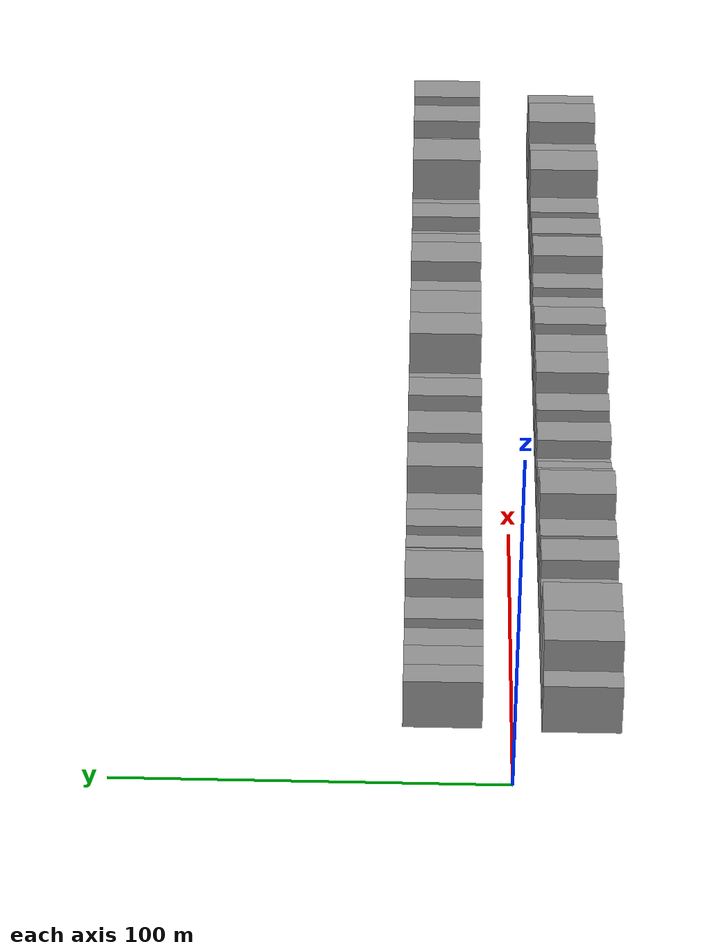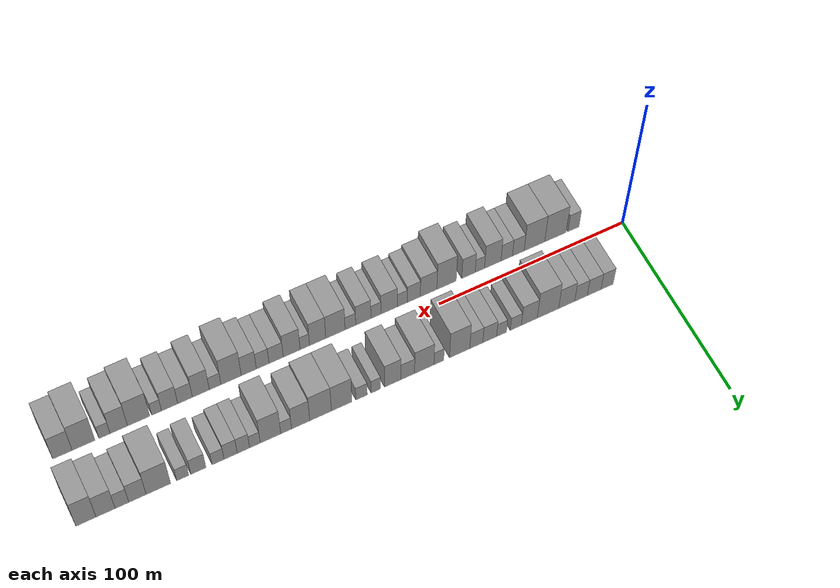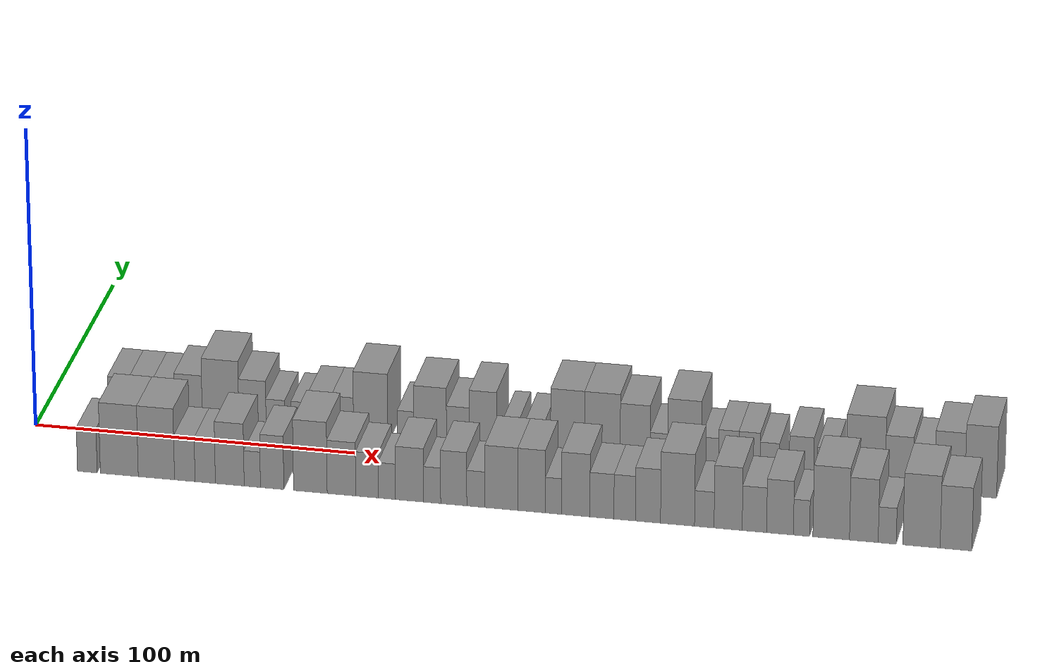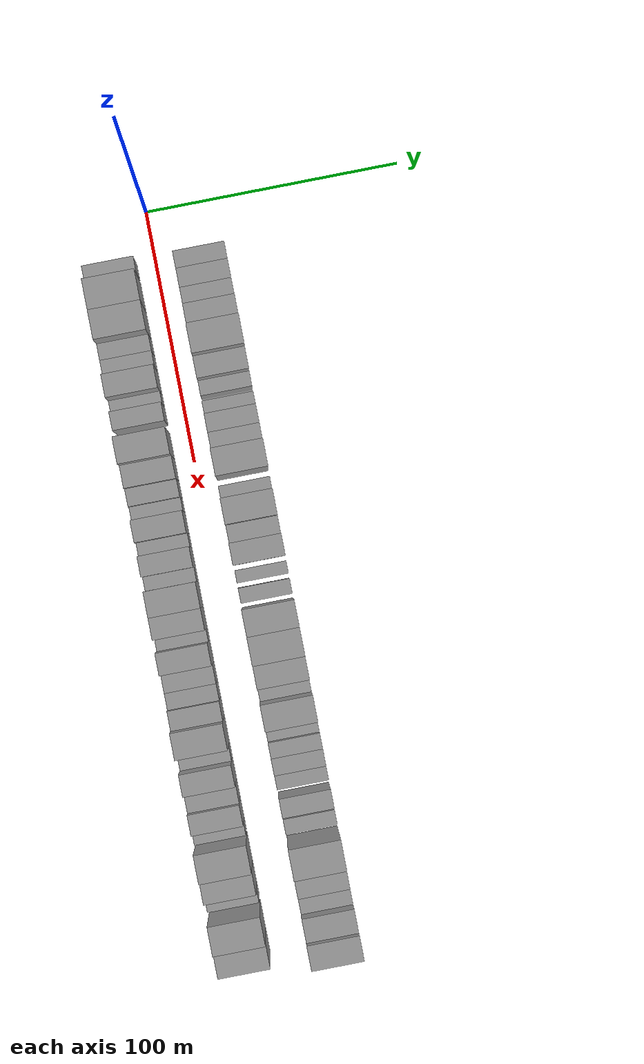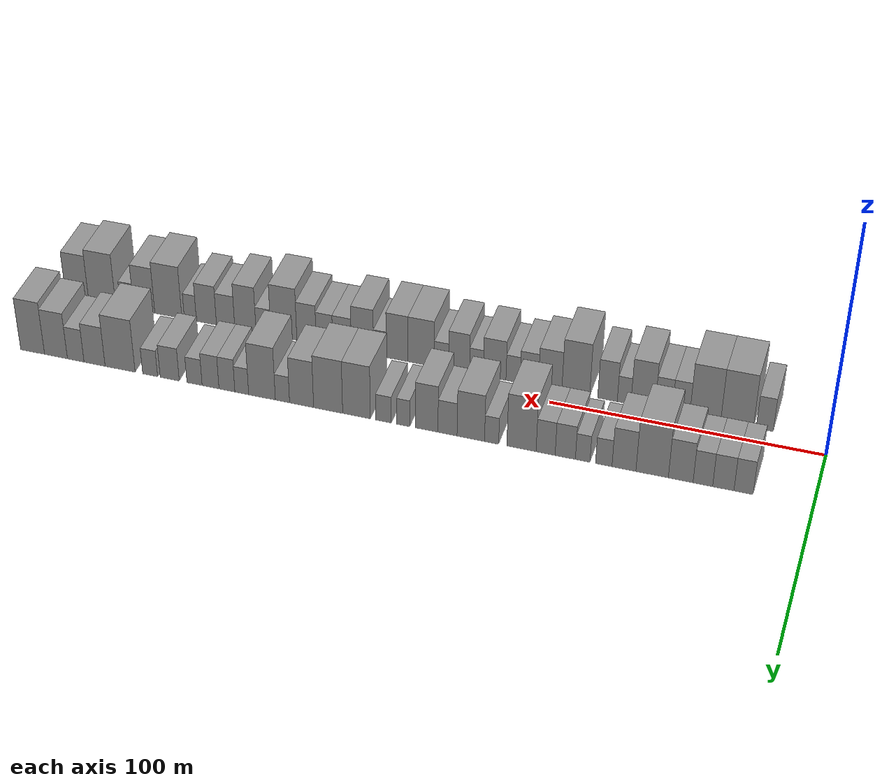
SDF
<sdf version="1.6">
 <world name="default">
  <scene>
   <sky><clouds><speed>12</speed></clouds></sky>
   <ambient>0.4 0.4 0.4 1</ambient>
   <background>0.7 0.7 0.7 1</background>
   <shadows>1</shadows>
  </scene>
  <gravity>0 0 -9.8066</gravity>
  <magnetic_field>6e-06 2.3e-05 -4.2e-05</magnetic_field>
  <physics default="0" name="default_physics" type="ode">
   <ode>
    <solver>
     <type>quick</type>
     <iters>10</iters>
     <sor>1.0</sor>
     <use_dynamic_moi_rescaling>0</use_dynamic_moi_rescaling>
    </solver>
    <constraints>
     <cfm>0</cfm>
     <erp>0.2</erp>
     <contact_max_correcting_vel>100</contact_max_correcting_vel>
     <contact_surface_layer>0.001</contact_surface_layer>
    </constraints>
   </ode>
   <max_step_size>0.004</max_step_size>
   <real_time_factor>1</real_time_factor>
   <real_time_update_rate>250</real_time_update_rate>
  </physics>
  <light name="sun" type="directional">
   <pose>0 0 10 0 0 0</pose>
   <diffuse>0.8 0.8 0.8 1</diffuse>
   <specular>0.2 0.2 0.2 1</specular>
   <attenuation>
    <range>1000</range>
    <constant>0.9</constant>
    <linear>0.01</linear>
    <quadratic>0.001</quadratic>
   </attenuation>
   <direction>-0.5 0.1 -0.9</direction>
  </light>
  <model name="building_1">
   <static>1</static>
   <pose>24.3293 17.5000 0 0.000000 0.000000 1.570796</pose>
   <link name="link">
    <pose>0 0 7.50 0 0 0</pose>
    <collision name="collision"><geometry><box><size>20.0000 6.6587 15.0000</size></box></geometry></collision>
    <visual name="visual">
     <cast_shadows>0</cast_shadows>
     <geometry><box><size>20.0000 6.6587 15.0000</size></box></geometry>
     <material>
      <script>
       <uri>model://grey_wall/materials/scripts</uri>
       <uri>model://grey_wall/materials/textures</uri>
       <name>vrc/grey_wall</name>
      </script>
     </material>
    </visual>
   </link>
  </model>
  <model name="building_2">
   <static>1</static>
   <pose>31.3864 17.5000 0 0.000000 0.000000 1.570796</pose>
   <link name="link">
    <pose>0 0 7.50 0 0 0</pose>
    <collision name="collision"><geometry><box><size>20.0000 7.4555 15.0000</size></box></geometry></collision>
    <visual name="visual">
     <cast_shadows>0</cast_shadows>
     <geometry><box><size>20.0000 7.4555 15.0000</size></box></geometry>
     <material>
      <script>
       <uri>model://grey_wall/materials/scripts</uri>
       <uri>model://grey_wall/materials/textures</uri>
       <name>vrc/grey_wall</name>
      </script>
     </material>
    </visual>
   </link>
  </model>
  <model name="building_3">
   <static>1</static>
   <pose>38.5593 17.5000 0 0.000000 0.000000 1.570796</pose>
   <link name="link">
    <pose>0 0 7.50 0 0 0</pose>
    <collision name="collision"><geometry><box><size>20.0000 6.8902 15.0000</size></box></geometry></collision>
    <visual name="visual">
     <cast_shadows>0</cast_shadows>
     <geometry><box><size>20.0000 6.8902 15.0000</size></box></geometry>
     <material>
      <script>
       <uri>model://grey_wall/materials/scripts</uri>
       <uri>model://grey_wall/materials/textures</uri>
       <name>vrc/grey_wall</name>
      </script>
     </material>
    </visual>
   </link>
  </model>
  <model name="building_4">
   <static>1</static>
   <pose>46.3622 17.5000 0 0.000000 0.000000 1.570796</pose>
   <link name="link">
    <pose>0 0 9.00 0 0 0</pose>
    <collision name="collision"><geometry><box><size>20.0000 8.7157 18.0000</size></box></geometry></collision>
    <visual name="visual">
     <cast_shadows>0</cast_shadows>
     <geometry><box><size>20.0000 8.7157 18.0000</size></box></geometry>
     <material>
      <script>
       <uri>model://grey_wall/materials/scripts</uri>
       <uri>model://grey_wall/materials/textures</uri>
       <name>vrc/grey_wall</name>
      </script>
     </material>
    </visual>
   </link>
  </model>
  <model name="building_5">
   <static>1</static>
   <pose>56.4723 17.5000 0 0.000000 0.000000 1.570796</pose>
   <link name="link">
    <pose>0 0 12.00 0 0 0</pose>
    <collision name="collision"><geometry><box><size>20.0000 11.5045 24.0000</size></box></geometry></collision>
    <visual name="visual">
     <cast_shadows>0</cast_shadows>
     <geometry><box><size>20.0000 11.5045 24.0000</size></box></geometry>
     <material>
      <script>
       <uri>model://grey_wall/materials/scripts</uri>
       <uri>model://grey_wall/materials/textures</uri>
       <name>vrc/grey_wall</name>
      </script>
     </material>
    </visual>
   </link>
  </model>
  <model name="building_6">
   <static>1</static>
   <pose>66.5000 17.5000 0 0.000000 0.000000 1.570796</pose>
   <link name="link">
    <pose>0 0 9.00 0 0 0</pose>
    <collision name="collision"><geometry><box><size>20.0000 8.5510 18.0000</size></box></geometry></collision>
    <visual name="visual">
     <cast_shadows>0</cast_shadows>
     <geometry><box><size>20.0000 8.5510 18.0000</size></box></geometry>
     <material>
      <script>
       <uri>model://grey_wall/materials/scripts</uri>
       <uri>model://grey_wall/materials/textures</uri>
       <name>vrc/grey_wall</name>
      </script>
     </material>
    </visual>
   </link>
  </model>
  <model name="building_7">
   <static>1</static>
   <pose>73.7174 17.5000 0 0.000000 0.000000 1.570796</pose>
   <link name="link">
    <pose>0 0 6.00 0 0 0</pose>
    <collision name="collision"><geometry><box><size>20.0000 5.8837 12.0000</size></box></geometry></collision>
    <visual name="visual">
     <cast_shadows>0</cast_shadows>
     <geometry><box><size>20.0000 5.8837 12.0000</size></box></geometry>
     <material>
      <script>
       <uri>model://grey_wall/materials/scripts</uri>
       <uri>model://grey_wall/materials/textures</uri>
       <name>vrc/grey_wall</name>
      </script>
     </material>
    </visual>
   </link>
  </model>
  <model name="building_8">
   <static>1</static>
   <pose>81.2835 17.5000 0 0.000000 0.000000 1.570796</pose>
   <link name="link">
    <pose>0 0 6.00 0 0 0</pose>
    <collision name="collision"><geometry><box><size>20.0000 5.2485 12.0000</size></box></geometry></collision>
    <visual name="visual">
     <cast_shadows>0</cast_shadows>
     <geometry><box><size>20.0000 5.2485 12.0000</size></box></geometry>
     <material>
      <script>
       <uri>model://grey_wall/materials/scripts</uri>
       <uri>model://grey_wall/materials/textures</uri>
       <name>vrc/grey_wall</name>
      </script>
     </material>
    </visual>
   </link>
  </model>
  <model name="building_9">
   <static>1</static>
   <pose>87.5686 17.5000 0 0.000000 0.000000 1.570796</pose>
   <link name="link">
    <pose>0 0 7.50 0 0 0</pose>
    <collision name="collision"><geometry><box><size>20.0000 7.3218 15.0000</size></box></geometry></collision>
    <visual name="visual">
     <cast_shadows>0</cast_shadows>
     <geometry><box><size>20.0000 7.3218 15.0000</size></box></geometry>
     <material>
      <script>
       <uri>model://grey_wall/materials/scripts</uri>
       <uri>model://grey_wall/materials/textures</uri>
       <name>vrc/grey_wall</name>
      </script>
     </material>
    </visual>
   </link>
  </model>
  <model name="building_10">
   <static>1</static>
   <pose>94.6913 17.5000 0 0.000000 0.000000 1.570796</pose>
   <link name="link">
    <pose>0 0 7.50 0 0 0</pose>
    <collision name="collision"><geometry><box><size>20.0000 6.9235 15.0000</size></box></geometry></collision>
    <visual name="visual">
     <cast_shadows>0</cast_shadows>
     <geometry><box><size>20.0000 6.9235 15.0000</size></box></geometry>
     <material>
      <script>
       <uri>model://grey_wall/materials/scripts</uri>
       <uri>model://grey_wall/materials/textures</uri>
       <name>vrc/grey_wall</name>
      </script>
     </material>
    </visual>
   </link>
  </model>
  <model name="building_11">
   <static>1</static>
   <pose>103.4852 17.5000 0 0.000000 0.000000 1.570796</pose>
   <link name="link">
    <pose>0 0 12.00 0 0 0</pose>
    <collision name="collision"><geometry><box><size>20.0000 10.6644 24.0000</size></box></geometry></collision>
    <visual name="visual">
     <cast_shadows>0</cast_shadows>
     <geometry><box><size>20.0000 10.6644 24.0000</size></box></geometry>
     <material>
      <script>
       <uri>model://grey_wall/materials/scripts</uri>
       <uri>model://grey_wall/materials/textures</uri>
       <name>vrc/grey_wall</name>
      </script>
     </material>
    </visual>
   </link>
  </model>
  <model name="building_12">
   <static>1</static>
   <pose>114.4038 17.5000 0 0.000000 0.000000 1.570796</pose>
   <link name="link">
    <pose>0 0 6.00 0 0 0</pose>
    <collision name="collision"><geometry><box><size>20.0000 5.1728 12.0000</size></box></geometry></collision>
    <visual name="visual">
     <cast_shadows>0</cast_shadows>
     <geometry><box><size>20.0000 5.1728 12.0000</size></box></geometry>
     <material>
      <script>
       <uri>model://grey_wall/materials/scripts</uri>
       <uri>model://grey_wall/materials/textures</uri>
       <name>vrc/grey_wall</name>
      </script>
     </material>
    </visual>
   </link>
  </model>
  <model name="building_13">
   <static>1</static>
   <pose>122.0544 17.5000 0 0.000000 0.000000 1.570796</pose>
   <link name="link">
    <pose>0 0 10.50 0 0 0</pose>
    <collision name="collision"><geometry><box><size>20.0000 10.1282 21.0000</size></box></geometry></collision>
    <visual name="visual">
     <cast_shadows>0</cast_shadows>
     <geometry><box><size>20.0000 10.1282 21.0000</size></box></geometry>
     <material>
      <script>
       <uri>model://grey_wall/materials/scripts</uri>
       <uri>model://grey_wall/materials/textures</uri>
       <name>vrc/grey_wall</name>
      </script>
     </material>
    </visual>
   </link>
  </model>
  <model name="building_14">
   <static>1</static>
   <pose>130.6511 17.5000 0 0.000000 0.000000 1.570796</pose>
   <link name="link">
    <pose>0 0 7.50 0 0 0</pose>
    <collision name="collision"><geometry><box><size>20.0000 7.0652 15.0000</size></box></geometry></collision>
    <visual name="visual">
     <cast_shadows>0</cast_shadows>
     <geometry><box><size>20.0000 7.0652 15.0000</size></box></geometry>
     <material>
      <script>
       <uri>model://grey_wall/materials/scripts</uri>
       <uri>model://grey_wall/materials/textures</uri>
       <name>vrc/grey_wall</name>
      </script>
     </material>
    </visual>
   </link>
  </model>
  <model name="building_15">
   <static>1</static>
   <pose>138.4211 17.5000 0 0.000000 0.000000 1.570796</pose>
   <link name="link">
    <pose>0 0 10.50 0 0 0</pose>
    <collision name="collision"><geometry><box><size>20.0000 8.4748 21.0000</size></box></geometry></collision>
    <visual name="visual">
     <cast_shadows>0</cast_shadows>
     <geometry><box><size>20.0000 8.4748 21.0000</size></box></geometry>
     <material>
      <script>
       <uri>model://grey_wall/materials/scripts</uri>
       <uri>model://grey_wall/materials/textures</uri>
       <name>vrc/grey_wall</name>
      </script>
     </material>
    </visual>
   </link>
  </model>
  <model name="building_16">
   <static>1</static>
   <pose>147.1039 17.5000 0 0.000000 0.000000 1.570796</pose>
   <link name="link">
    <pose>0 0 6.00 0 0 0</pose>
    <collision name="collision"><geometry><box><size>20.0000 4.8908 12.0000</size></box></geometry></collision>
    <visual name="visual">
     <cast_shadows>0</cast_shadows>
     <geometry><box><size>20.0000 4.8908 12.0000</size></box></geometry>
     <material>
      <script>
       <uri>model://grey_wall/materials/scripts</uri>
       <uri>model://grey_wall/materials/textures</uri>
       <name>vrc/grey_wall</name>
      </script>
     </material>
    </visual>
   </link>
  </model>
  <model name="building_17">
   <static>1</static>
   <pose>154.4874 17.5000 0 0.000000 0.000000 1.570796</pose>
   <link name="link">
    <pose>0 0 6.00 0 0 0</pose>
    <collision name="collision"><geometry><box><size>20.0000 5.8762 12.0000</size></box></geometry></collision>
    <visual name="visual">
     <cast_shadows>0</cast_shadows>
     <geometry><box><size>20.0000 5.8762 12.0000</size></box></geometry>
     <material>
      <script>
       <uri>model://grey_wall/materials/scripts</uri>
       <uri>model://grey_wall/materials/textures</uri>
       <name>vrc/grey_wall</name>
      </script>
     </material>
    </visual>
   </link>
  </model>
  <model name="building_18">
   <static>1</static>
   <pose>164.6580 17.5000 0 0.000000 0.000000 1.570796</pose>
   <link name="link">
    <pose>0 0 12.00 0 0 0</pose>
    <collision name="collision"><geometry><box><size>20.0000 10.4650 24.0000</size></box></geometry></collision>
    <visual name="visual">
     <cast_shadows>0</cast_shadows>
     <geometry><box><size>20.0000 10.4650 24.0000</size></box></geometry>
     <material>
      <script>
       <uri>model://grey_wall/materials/scripts</uri>
       <uri>model://grey_wall/materials/textures</uri>
       <name>vrc/grey_wall</name>
      </script>
     </material>
    </visual>
   </link>
  </model>
  <model name="building_19">
   <static>1</static>
   <pose>175.4049 17.5000 0 0.000000 0.000000 1.570796</pose>
   <link name="link">
    <pose>0 0 12.00 0 0 0</pose>
    <collision name="collision"><geometry><box><size>20.0000 11.0287 24.0000</size></box></geometry></collision>
    <visual name="visual">
     <cast_shadows>0</cast_shadows>
     <geometry><box><size>20.0000 11.0287 24.0000</size></box></geometry>
     <material>
      <script>
       <uri>model://grey_wall/materials/scripts</uri>
       <uri>model://grey_wall/materials/textures</uri>
       <name>vrc/grey_wall</name>
      </script>
     </material>
    </visual>
   </link>
  </model>
  <model name="building_20">
   <static>1</static>
   <pose>185.5153 17.5000 0 0.000000 0.000000 1.570796</pose>
   <link name="link">
    <pose>0 0 10.50 0 0 0</pose>
    <collision name="collision"><geometry><box><size>20.0000 9.1920 21.0000</size></box></geometry></collision>
    <visual name="visual">
     <cast_shadows>0</cast_shadows>
     <geometry><box><size>20.0000 9.1920 21.0000</size></box></geometry>
     <material>
      <script>
       <uri>model://grey_wall/materials/scripts</uri>
       <uri>model://grey_wall/materials/textures</uri>
       <name>vrc/grey_wall</name>
      </script>
     </material>
    </visual>
   </link>
  </model>
  <model name="building_21">
   <static>1</static>
   <pose>192.8316 17.5000 0 0.000000 0.000000 1.570796</pose>
   <link name="link">
    <pose>0 0 6.00 0 0 0</pose>
    <collision name="collision"><geometry><box><size>20.0000 5.4407 12.0000</size></box></geometry></collision>
    <visual name="visual">
     <cast_shadows>0</cast_shadows>
     <geometry><box><size>20.0000 5.4407 12.0000</size></box></geometry>
     <material>
      <script>
       <uri>model://grey_wall/materials/scripts</uri>
       <uri>model://grey_wall/materials/textures</uri>
       <name>vrc/grey_wall</name>
      </script>
     </material>
    </visual>
   </link>
  </model>
  <model name="building_22">
   <static>1</static>
   <pose>200.6947 17.5000 0 0.000000 0.000000 1.570796</pose>
   <link name="link">
    <pose>0 0 12.00 0 0 0</pose>
    <collision name="collision"><geometry><box><size>20.0000 10.2853 24.0000</size></box></geometry></collision>
    <visual name="visual">
     <cast_shadows>0</cast_shadows>
     <geometry><box><size>20.0000 10.2853 24.0000</size></box></geometry>
     <material>
      <script>
       <uri>model://grey_wall/materials/scripts</uri>
       <uri>model://grey_wall/materials/textures</uri>
       <name>vrc/grey_wall</name>
      </script>
     </material>
    </visual>
   </link>
  </model>
  <model name="building_23">
   <static>1</static>
   <pose>208.5004 17.5000 0 0.000000 0.000000 1.570796</pose>
   <link name="link">
    <pose>0 0 6.00 0 0 0</pose>
    <collision name="collision"><geometry><box><size>20.0000 5.3262 12.0000</size></box></geometry></collision>
    <visual name="visual">
     <cast_shadows>0</cast_shadows>
     <geometry><box><size>20.0000 5.3262 12.0000</size></box></geometry>
     <material>
      <script>
       <uri>model://grey_wall/materials/scripts</uri>
       <uri>model://grey_wall/materials/textures</uri>
       <name>vrc/grey_wall</name>
      </script>
     </material>
    </visual>
   </link>
  </model>
  <model name="building_24">
   <static>1</static>
   <pose>214.2465 17.5000 0 0.000000 0.000000 1.570796</pose>
   <link name="link">
    <pose>0 0 7.50 0 0 0</pose>
    <collision name="collision"><geometry><box><size>20.0000 6.1659 15.0000</size></box></geometry></collision>
    <visual name="visual">
     <cast_shadows>0</cast_shadows>
     <geometry><box><size>20.0000 6.1659 15.0000</size></box></geometry>
     <material>
      <script>
       <uri>model://grey_wall/materials/scripts</uri>
       <uri>model://grey_wall/materials/textures</uri>
       <name>vrc/grey_wall</name>
      </script>
     </material>
    </visual>
   </link>
  </model>
  <model name="building_25">
   <static>1</static>
   <pose>220.6165 17.5000 0 0.000000 0.000000 1.570796</pose>
   <link name="link">
    <pose>0 0 7.50 0 0 0</pose>
    <collision name="collision"><geometry><box><size>20.0000 6.5742 15.0000</size></box></geometry></collision>
    <visual name="visual">
     <cast_shadows>0</cast_shadows>
     <geometry><box><size>20.0000 6.5742 15.0000</size></box></geometry>
     <material>
      <script>
       <uri>model://grey_wall/materials/scripts</uri>
       <uri>model://grey_wall/materials/textures</uri>
       <name>vrc/grey_wall</name>
      </script>
     </material>
    </visual>
   </link>
  </model>
  <model name="building_26">
   <static>1</static>
   <pose>226.8721 17.5000 0 0.000000 0.000000 1.570796</pose>
   <link name="link">
    <pose>0 0 6.00 0 0 0</pose>
    <collision name="collision"><geometry><box><size>20.0000 5.9371 12.0000</size></box></geometry></collision>
    <visual name="visual">
     <cast_shadows>0</cast_shadows>
     <geometry><box><size>20.0000 5.9371 12.0000</size></box></geometry>
     <material>
      <script>
       <uri>model://grey_wall/materials/scripts</uri>
       <uri>model://grey_wall/materials/textures</uri>
       <name>vrc/grey_wall</name>
      </script>
     </material>
    </visual>
   </link>
  </model>
  <model name="building_27">
   <static>1</static>
   <pose>236.5884 17.5000 0 0.000000 0.000000 1.570796</pose>
   <link name="link">
    <pose>0 0 7.50 0 0 0</pose>
    <collision name="collision"><geometry><box><size>20.0000 7.4955 15.0000</size></box></geometry></collision>
    <visual name="visual">
     <cast_shadows>0</cast_shadows>
     <geometry><box><size>20.0000 7.4955 15.0000</size></box></geometry>
     <material>
      <script>
       <uri>model://grey_wall/materials/scripts</uri>
       <uri>model://grey_wall/materials/textures</uri>
       <name>vrc/grey_wall</name>
      </script>
     </material>
    </visual>
   </link>
  </model>
  <model name="building_28">
   <static>1</static>
   <pose>244.2812 17.5000 0 0.000000 0.000000 1.570796</pose>
   <link name="link">
    <pose>0 0 6.00 0 0 0</pose>
    <collision name="collision"><geometry><box><size>20.0000 5.8900 12.0000</size></box></geometry></collision>
    <visual name="visual">
     <cast_shadows>0</cast_shadows>
     <geometry><box><size>20.0000 5.8900 12.0000</size></box></geometry>
     <material>
      <script>
       <uri>model://grey_wall/materials/scripts</uri>
       <uri>model://grey_wall/materials/textures</uri>
       <name>vrc/grey_wall</name>
      </script>
     </material>
    </visual>
   </link>
  </model>
  <model name="building_29">
   <static>1</static>
   <pose>256.1907 17.5000 0 0.000000 0.000000 1.570796</pose>
   <link name="link">
    <pose>0 0 12.00 0 0 0</pose>
    <collision name="collision"><geometry><box><size>20.0000 11.9292 24.0000</size></box></geometry></collision>
    <visual name="visual">
     <cast_shadows>0</cast_shadows>
     <geometry><box><size>20.0000 11.9292 24.0000</size></box></geometry>
     <material>
      <script>
       <uri>model://grey_wall/materials/scripts</uri>
       <uri>model://grey_wall/materials/textures</uri>
       <name>vrc/grey_wall</name>
      </script>
     </material>
    </visual>
   </link>
  </model>
  <model name="building_30">
   <static>1</static>
   <pose>266.3586 17.5000 0 0.000000 0.000000 1.570796</pose>
   <link name="link">
    <pose>0 0 9.00 0 0 0</pose>
    <collision name="collision"><geometry><box><size>20.0000 8.4065 18.0000</size></box></geometry></collision>
    <visual name="visual">
     <cast_shadows>0</cast_shadows>
     <geometry><box><size>20.0000 8.4065 18.0000</size></box></geometry>
     <material>
      <script>
       <uri>model://grey_wall/materials/scripts</uri>
       <uri>model://grey_wall/materials/textures</uri>
       <name>vrc/grey_wall</name>
      </script>
     </material>
    </visual>
   </link>
  </model>
  <model name="building_31">
   <static>1</static>
   <pose>273.8908 17.5000 0 0.000000 0.000000 1.570796</pose>
   <link name="link">
    <pose>0 0 7.50 0 0 0</pose>
    <collision name="collision"><geometry><box><size>20.0000 6.6580 15.0000</size></box></geometry></collision>
    <visual name="visual">
     <cast_shadows>0</cast_shadows>
     <geometry><box><size>20.0000 6.6580 15.0000</size></box></geometry>
     <material>
      <script>
       <uri>model://grey_wall/materials/scripts</uri>
       <uri>model://grey_wall/materials/textures</uri>
       <name>vrc/grey_wall</name>
      </script>
     </material>
    </visual>
   </link>
  </model>
  <model name="building_32">
   <static>1</static>
   <pose>281.8167 17.5000 0 0.000000 0.000000 1.570796</pose>
   <link name="link">
    <pose>0 0 10.50 0 0 0</pose>
    <collision name="collision"><geometry><box><size>20.0000 9.1938 21.0000</size></box></geometry></collision>
    <visual name="visual">
     <cast_shadows>0</cast_shadows>
     <geometry><box><size>20.0000 9.1938 21.0000</size></box></geometry>
     <material>
      <script>
       <uri>model://grey_wall/materials/scripts</uri>
       <uri>model://grey_wall/materials/textures</uri>
       <name>vrc/grey_wall</name>
      </script>
     </material>
    </visual>
   </link>
  </model>
  <model name="building_33">
   <static>1</static>
   <pose>291.2391 17.5000 0 0.000000 0.000000 1.570796</pose>
   <link name="link">
    <pose>0 0 12.00 0 0 0</pose>
    <collision name="collision"><geometry><box><size>20.0000 9.6509 24.0000</size></box></geometry></collision>
    <visual name="visual">
     <cast_shadows>0</cast_shadows>
     <geometry><box><size>20.0000 9.6509 24.0000</size></box></geometry>
     <material>
      <script>
       <uri>model://grey_wall/materials/scripts</uri>
       <uri>model://grey_wall/materials/textures</uri>
       <name>vrc/grey_wall</name>
      </script>
     </material>
    </visual>
   </link>
  </model>
  <model name="building_34">
   <static>1</static>
   <pose>23.0649 -17.5000 0 0.000000 0.000000 1.570796</pose>
   <link name="link">
    <pose>0 0 7.50 0 0 0</pose>
    <collision name="collision"><geometry><box><size>20.0000 6.1299 15.0000</size></box></geometry></collision>
    <visual name="visual">
     <cast_shadows>0</cast_shadows>
     <geometry><box><size>20.0000 6.1299 15.0000</size></box></geometry>
     <material>
      <script>
       <uri>model://grey_wall/materials/scripts</uri>
       <uri>model://grey_wall/materials/textures</uri>
       <name>vrc/grey_wall</name>
      </script>
     </material>
    </visual>
   </link>
  </model>
  <model name="building_35">
   <static>1</static>
   <pose>33.0320 -17.5000 0 0.000000 0.000000 1.570796</pose>
   <link name="link">
    <pose>0 0 12.00 0 0 0</pose>
    <collision name="collision"><geometry><box><size>20.0000 11.8043 24.0000</size></box></geometry></collision>
    <visual name="visual">
     <cast_shadows>0</cast_shadows>
     <geometry><box><size>20.0000 11.8043 24.0000</size></box></geometry>
     <material>
      <script>
       <uri>model://grey_wall/materials/scripts</uri>
       <uri>model://grey_wall/materials/textures</uri>
       <name>vrc/grey_wall</name>
      </script>
     </material>
    </visual>
   </link>
  </model>
  <model name="building_36">
   <static>1</static>
   <pose>44.5746 -17.5000 0 0.000000 0.000000 1.570796</pose>
   <link name="link">
    <pose>0 0 12.00 0 0 0</pose>
    <collision name="collision"><geometry><box><size>20.0000 11.2810 24.0000</size></box></geometry></collision>
    <visual name="visual">
     <cast_shadows>0</cast_shadows>
     <geometry><box><size>20.0000 11.2810 24.0000</size></box></geometry>
     <material>
      <script>
       <uri>model://grey_wall/materials/scripts</uri>
       <uri>model://grey_wall/materials/textures</uri>
       <name>vrc/grey_wall</name>
      </script>
     </material>
    </visual>
   </link>
  </model>
  <model name="building_37">
   <static>1</static>
   <pose>53.4022 -17.5000 0 0.000000 0.000000 1.570796</pose>
   <link name="link">
    <pose>0 0 7.50 0 0 0</pose>
    <collision name="collision"><geometry><box><size>20.0000 6.3742 15.0000</size></box></geometry></collision>
    <visual name="visual">
     <cast_shadows>0</cast_shadows>
     <geometry><box><size>20.0000 6.3742 15.0000</size></box></geometry>
     <material>
      <script>
       <uri>model://grey_wall/materials/scripts</uri>
       <uri>model://grey_wall/materials/textures</uri>
       <name>vrc/grey_wall</name>
      </script>
     </material>
    </visual>
   </link>
  </model>
  <model name="building_38">
   <static>1</static>
   <pose>59.7423 -17.5000 0 0.000000 0.000000 1.570796</pose>
   <link name="link">
    <pose>0 0 7.50 0 0 0</pose>
    <collision name="collision"><geometry><box><size>20.0000 6.3060 15.0000</size></box></geometry></collision>
    <visual name="visual">
     <cast_shadows>0</cast_shadows>
     <geometry><box><size>20.0000 6.3060 15.0000</size></box></geometry>
     <material>
      <script>
       <uri>model://grey_wall/materials/scripts</uri>
       <uri>model://grey_wall/materials/textures</uri>
       <name>vrc/grey_wall</name>
      </script>
     </material>
    </visual>
   </link>
  </model>
  <model name="building_39">
   <static>1</static>
   <pose>67.3585 -17.5000 0 0.000000 0.000000 1.570796</pose>
   <link name="link">
    <pose>0 0 10.50 0 0 0</pose>
    <collision name="collision"><geometry><box><size>20.0000 8.9265 21.0000</size></box></geometry></collision>
    <visual name="visual">
     <cast_shadows>0</cast_shadows>
     <geometry><box><size>20.0000 8.9265 21.0000</size></box></geometry>
     <material>
      <script>
       <uri>model://grey_wall/materials/scripts</uri>
       <uri>model://grey_wall/materials/textures</uri>
       <name>vrc/grey_wall</name>
      </script>
     </material>
    </visual>
   </link>
  </model>
  <model name="building_40">
   <static>1</static>
   <pose>74.3347 -17.5000 0 0.000000 0.000000 1.570796</pose>
   <link name="link">
    <pose>0 0 6.00 0 0 0</pose>
    <collision name="collision"><geometry><box><size>20.0000 5.0258 12.0000</size></box></geometry></collision>
    <visual name="visual">
     <cast_shadows>0</cast_shadows>
     <geometry><box><size>20.0000 5.0258 12.0000</size></box></geometry>
     <material>
      <script>
       <uri>model://grey_wall/materials/scripts</uri>
       <uri>model://grey_wall/materials/textures</uri>
       <name>vrc/grey_wall</name>
      </script>
     </material>
    </visual>
   </link>
  </model>
  <model name="building_41">
   <static>1</static>
   <pose>80.4687 -17.5000 0 0.000000 0.000000 1.570796</pose>
   <link name="link">
    <pose>0 0 9.00 0 0 0</pose>
    <collision name="collision"><geometry><box><size>20.0000 7.2424 18.0000</size></box></geometry></collision>
    <visual name="visual">
     <cast_shadows>0</cast_shadows>
     <geometry><box><size>20.0000 7.2424 18.0000</size></box></geometry>
     <material>
      <script>
       <uri>model://grey_wall/materials/scripts</uri>
       <uri>model://grey_wall/materials/textures</uri>
       <name>vrc/grey_wall</name>
      </script>
     </material>
    </visual>
   </link>
  </model>
  <model name="building_42">
   <static>1</static>
   <pose>92.2791 -17.5000 0 0.000000 0.000000 1.570796</pose>
   <link name="link">
    <pose>0 0 12.00 0 0 0</pose>
    <collision name="collision"><geometry><box><size>20.0000 10.3784 24.0000</size></box></geometry></collision>
    <visual name="visual">
     <cast_shadows>0</cast_shadows>
     <geometry><box><size>20.0000 10.3784 24.0000</size></box></geometry>
     <material>
      <script>
       <uri>model://grey_wall/materials/scripts</uri>
       <uri>model://grey_wall/materials/textures</uri>
       <name>vrc/grey_wall</name>
      </script>
     </material>
    </visual>
   </link>
  </model>
  <model name="building_43">
   <static>1</static>
   <pose>101.8758 -17.5000 0 0.000000 0.000000 1.570796</pose>
   <link name="link">
    <pose>0 0 9.00 0 0 0</pose>
    <collision name="collision"><geometry><box><size>20.0000 8.8151 18.0000</size></box></geometry></collision>
    <visual name="visual">
     <cast_shadows>0</cast_shadows>
     <geometry><box><size>20.0000 8.8151 18.0000</size></box></geometry>
     <material>
      <script>
       <uri>model://grey_wall/materials/scripts</uri>
       <uri>model://grey_wall/materials/textures</uri>
       <name>vrc/grey_wall</name>
      </script>
     </material>
    </visual>
   </link>
  </model>
  <model name="building_44">
   <static>1</static>
   <pose>109.7472 -17.5000 0 0.000000 0.000000 1.570796</pose>
   <link name="link">
    <pose>0 0 7.50 0 0 0</pose>
    <collision name="collision"><geometry><box><size>20.0000 6.9277 15.0000</size></box></geometry></collision>
    <visual name="visual">
     <cast_shadows>0</cast_shadows>
     <geometry><box><size>20.0000 6.9277 15.0000</size></box></geometry>
     <material>
      <script>
       <uri>model://grey_wall/materials/scripts</uri>
       <uri>model://grey_wall/materials/textures</uri>
       <name>vrc/grey_wall</name>
      </script>
     </material>
    </visual>
   </link>
  </model>
  <model name="building_45">
   <static>1</static>
   <pose>115.8663 -17.5000 0 0.000000 0.000000 1.570796</pose>
   <link name="link">
    <pose>0 0 6.00 0 0 0</pose>
    <collision name="collision"><geometry><box><size>20.0000 5.3105 12.0000</size></box></geometry></collision>
    <visual name="visual">
     <cast_shadows>0</cast_shadows>
     <geometry><box><size>20.0000 5.3105 12.0000</size></box></geometry>
     <material>
      <script>
       <uri>model://grey_wall/materials/scripts</uri>
       <uri>model://grey_wall/materials/textures</uri>
       <name>vrc/grey_wall</name>
      </script>
     </material>
    </visual>
   </link>
  </model>
  <model name="building_46">
   <static>1</static>
   <pose>122.8437 -17.5000 0 0.000000 0.000000 1.570796</pose>
   <link name="link">
    <pose>0 0 9.00 0 0 0</pose>
    <collision name="collision"><geometry><box><size>20.0000 8.6443 18.0000</size></box></geometry></collision>
    <visual name="visual">
     <cast_shadows>0</cast_shadows>
     <geometry><box><size>20.0000 8.6443 18.0000</size></box></geometry>
     <material>
      <script>
       <uri>model://grey_wall/materials/scripts</uri>
       <uri>model://grey_wall/materials/textures</uri>
       <name>vrc/grey_wall</name>
      </script>
     </material>
    </visual>
   </link>
  </model>
  <model name="building_47">
   <static>1</static>
   <pose>129.7766 -17.5000 0 0.000000 0.000000 1.570796</pose>
   <link name="link">
    <pose>0 0 6.00 0 0 0</pose>
    <collision name="collision"><geometry><box><size>20.0000 5.2214 12.0000</size></box></geometry></collision>
    <visual name="visual">
     <cast_shadows>0</cast_shadows>
     <geometry><box><size>20.0000 5.2214 12.0000</size></box></geometry>
     <material>
      <script>
       <uri>model://grey_wall/materials/scripts</uri>
       <uri>model://grey_wall/materials/textures</uri>
       <name>vrc/grey_wall</name>
      </script>
     </material>
    </visual>
   </link>
  </model>
  <model name="building_48">
   <static>1</static>
   <pose>136.3872 -17.5000 0 0.000000 0.000000 1.570796</pose>
   <link name="link">
    <pose>0 0 9.00 0 0 0</pose>
    <collision name="collision"><geometry><box><size>20.0000 7.9998 18.0000</size></box></geometry></collision>
    <visual name="visual">
     <cast_shadows>0</cast_shadows>
     <geometry><box><size>20.0000 7.9998 18.0000</size></box></geometry>
     <material>
      <script>
       <uri>model://grey_wall/materials/scripts</uri>
       <uri>model://grey_wall/materials/textures</uri>
       <name>vrc/grey_wall</name>
      </script>
     </material>
    </visual>
   </link>
  </model>
  <model name="building_49">
   <static>1</static>
   <pose>143.1559 -17.5000 0 0.000000 0.000000 1.570796</pose>
   <link name="link">
    <pose>0 0 6.00 0 0 0</pose>
    <collision name="collision"><geometry><box><size>20.0000 5.5377 12.0000</size></box></geometry></collision>
    <visual name="visual">
     <cast_shadows>0</cast_shadows>
     <geometry><box><size>20.0000 5.5377 12.0000</size></box></geometry>
     <material>
      <script>
       <uri>model://grey_wall/materials/scripts</uri>
       <uri>model://grey_wall/materials/textures</uri>
       <name>vrc/grey_wall</name>
      </script>
     </material>
    </visual>
   </link>
  </model>
  <model name="building_50">
   <static>1</static>
   <pose>150.9649 -17.5000 0 0.000000 0.000000 1.570796</pose>
   <link name="link">
    <pose>0 0 10.50 0 0 0</pose>
    <collision name="collision"><geometry><box><size>20.0000 10.0803 21.0000</size></box></geometry></collision>
    <visual name="visual">
     <cast_shadows>0</cast_shadows>
     <geometry><box><size>20.0000 10.0803 21.0000</size></box></geometry>
     <material>
      <script>
       <uri>model://grey_wall/materials/scripts</uri>
       <uri>model://grey_wall/materials/textures</uri>
       <name>vrc/grey_wall</name>
      </script>
     </material>
    </visual>
   </link>
  </model>
  <model name="building_51">
   <static>1</static>
   <pose>160.2238 -17.5000 0 0.000000 0.000000 1.570796</pose>
   <link name="link">
    <pose>0 0 10.50 0 0 0</pose>
    <collision name="collision"><geometry><box><size>20.0000 8.4376 21.0000</size></box></geometry></collision>
    <visual name="visual">
     <cast_shadows>0</cast_shadows>
     <geometry><box><size>20.0000 8.4376 21.0000</size></box></geometry>
     <material>
      <script>
       <uri>model://grey_wall/materials/scripts</uri>
       <uri>model://grey_wall/materials/textures</uri>
       <name>vrc/grey_wall</name>
      </script>
     </material>
    </visual>
   </link>
  </model>
  <model name="building_52">
   <static>1</static>
   <pose>166.8938 -17.5000 0 0.000000 0.000000 1.570796</pose>
   <link name="link">
    <pose>0 0 6.00 0 0 0</pose>
    <collision name="collision"><geometry><box><size>20.0000 4.9023 12.0000</size></box></geometry></collision>
    <visual name="visual">
     <cast_shadows>0</cast_shadows>
     <geometry><box><size>20.0000 4.9023 12.0000</size></box></geometry>
     <material>
      <script>
       <uri>model://grey_wall/materials/scripts</uri>
       <uri>model://grey_wall/materials/textures</uri>
       <name>vrc/grey_wall</name>
      </script>
     </material>
    </visual>
   </link>
  </model>
  <model name="building_53">
   <static>1</static>
   <pose>173.6735 -17.5000 0 0.000000 0.000000 1.570796</pose>
   <link name="link">
    <pose>0 0 10.50 0 0 0</pose>
    <collision name="collision"><geometry><box><size>20.0000 8.6571 21.0000</size></box></geometry></collision>
    <visual name="visual">
     <cast_shadows>0</cast_shadows>
     <geometry><box><size>20.0000 8.6571 21.0000</size></box></geometry>
     <material>
      <script>
       <uri>model://grey_wall/materials/scripts</uri>
       <uri>model://grey_wall/materials/textures</uri>
       <name>vrc/grey_wall</name>
      </script>
     </material>
    </visual>
   </link>
  </model>
  <model name="building_54">
   <static>1</static>
   <pose>181.6540 -17.5000 0 0.000000 0.000000 1.570796</pose>
   <link name="link">
    <pose>0 0 7.50 0 0 0</pose>
    <collision name="collision"><geometry><box><size>20.0000 7.3039 15.0000</size></box></geometry></collision>
    <visual name="visual">
     <cast_shadows>0</cast_shadows>
     <geometry><box><size>20.0000 7.3039 15.0000</size></box></geometry>
     <material>
      <script>
       <uri>model://grey_wall/materials/scripts</uri>
       <uri>model://grey_wall/materials/textures</uri>
       <name>vrc/grey_wall</name>
      </script>
     </material>
    </visual>
   </link>
  </model>
  <model name="building_55">
   <static>1</static>
   <pose>188.5613 -17.5000 0 0.000000 0.000000 1.570796</pose>
   <link name="link">
    <pose>0 0 7.50 0 0 0</pose>
    <collision name="collision"><geometry><box><size>20.0000 6.5108 15.0000</size></box></geometry></collision>
    <visual name="visual">
     <cast_shadows>0</cast_shadows>
     <geometry><box><size>20.0000 6.5108 15.0000</size></box></geometry>
     <material>
      <script>
       <uri>model://grey_wall/materials/scripts</uri>
       <uri>model://grey_wall/materials/textures</uri>
       <name>vrc/grey_wall</name>
      </script>
     </material>
    </visual>
   </link>
  </model>
  <model name="building_56">
   <static>1</static>
   <pose>195.6428 -17.5000 0 0.000000 0.000000 1.570796</pose>
   <link name="link">
    <pose>0 0 9.00 0 0 0</pose>
    <collision name="collision"><geometry><box><size>20.0000 7.6523 18.0000</size></box></geometry></collision>
    <visual name="visual">
     <cast_shadows>0</cast_shadows>
     <geometry><box><size>20.0000 7.6523 18.0000</size></box></geometry>
     <material>
      <script>
       <uri>model://grey_wall/materials/scripts</uri>
       <uri>model://grey_wall/materials/textures</uri>
       <name>vrc/grey_wall</name>
      </script>
     </material>
    </visual>
   </link>
  </model>
  <model name="building_57">
   <static>1</static>
   <pose>204.6172 -17.5000 0 0.000000 0.000000 1.570796</pose>
   <link name="link">
    <pose>0 0 12.00 0 0 0</pose>
    <collision name="collision"><geometry><box><size>20.0000 10.2966 24.0000</size></box></geometry></collision>
    <visual name="visual">
     <cast_shadows>0</cast_shadows>
     <geometry><box><size>20.0000 10.2966 24.0000</size></box></geometry>
     <material>
      <script>
       <uri>model://grey_wall/materials/scripts</uri>
       <uri>model://grey_wall/materials/textures</uri>
       <name>vrc/grey_wall</name>
      </script>
     </material>
    </visual>
   </link>
  </model>
  <model name="building_58">
   <static>1</static>
   <pose>212.7248 -17.5000 0 0.000000 0.000000 1.570796</pose>
   <link name="link">
    <pose>0 0 6.00 0 0 0</pose>
    <collision name="collision"><geometry><box><size>20.0000 5.9185 12.0000</size></box></geometry></collision>
    <visual name="visual">
     <cast_shadows>0</cast_shadows>
     <geometry><box><size>20.0000 5.9185 12.0000</size></box></geometry>
     <material>
      <script>
       <uri>model://grey_wall/materials/scripts</uri>
       <uri>model://grey_wall/materials/textures</uri>
       <name>vrc/grey_wall</name>
      </script>
     </material>
    </visual>
   </link>
  </model>
  <model name="building_59">
   <static>1</static>
   <pose>219.9410 -17.5000 0 0.000000 0.000000 1.570796</pose>
   <link name="link">
    <pose>0 0 10.50 0 0 0</pose>
    <collision name="collision"><geometry><box><size>20.0000 8.5139 21.0000</size></box></geometry></collision>
    <visual name="visual">
     <cast_shadows>0</cast_shadows>
     <geometry><box><size>20.0000 8.5139 21.0000</size></box></geometry>
     <material>
      <script>
       <uri>model://grey_wall/materials/scripts</uri>
       <uri>model://grey_wall/materials/textures</uri>
       <name>vrc/grey_wall</name>
      </script>
     </material>
    </visual>
   </link>
  </model>
  <model name="building_60">
   <static>1</static>
   <pose>227.8813 -17.5000 0 0.000000 0.000000 1.570796</pose>
   <link name="link">
    <pose>0 0 7.50 0 0 0</pose>
    <collision name="collision"><geometry><box><size>20.0000 7.3666 15.0000</size></box></geometry></collision>
    <visual name="visual">
     <cast_shadows>0</cast_shadows>
     <geometry><box><size>20.0000 7.3666 15.0000</size></box></geometry>
     <material>
      <script>
       <uri>model://grey_wall/materials/scripts</uri>
       <uri>model://grey_wall/materials/textures</uri>
       <name>vrc/grey_wall</name>
      </script>
     </material>
    </visual>
   </link>
  </model>
  <model name="building_61">
   <static>1</static>
   <pose>235.6127 -17.5000 0 0.000000 0.000000 1.570796</pose>
   <link name="link">
    <pose>0 0 9.00 0 0 0</pose>
    <collision name="collision"><geometry><box><size>20.0000 8.0962 18.0000</size></box></geometry></collision>
    <visual name="visual">
     <cast_shadows>0</cast_shadows>
     <geometry><box><size>20.0000 8.0962 18.0000</size></box></geometry>
     <material>
      <script>
       <uri>model://grey_wall/materials/scripts</uri>
       <uri>model://grey_wall/materials/textures</uri>
       <name>vrc/grey_wall</name>
      </script>
     </material>
    </visual>
   </link>
  </model>
  <model name="building_62">
   <static>1</static>
   <pose>242.1001 -17.5000 0 0.000000 0.000000 1.570796</pose>
   <link name="link">
    <pose>0 0 6.00 0 0 0</pose>
    <collision name="collision"><geometry><box><size>20.0000 4.8787 12.0000</size></box></geometry></collision>
    <visual name="visual">
     <cast_shadows>0</cast_shadows>
     <geometry><box><size>20.0000 4.8787 12.0000</size></box></geometry>
     <material>
      <script>
       <uri>model://grey_wall/materials/scripts</uri>
       <uri>model://grey_wall/materials/textures</uri>
       <name>vrc/grey_wall</name>
      </script>
     </material>
    </visual>
   </link>
  </model>
  <model name="building_63">
   <static>1</static>
   <pose>251.0512 -17.5000 0 0.000000 0.000000 1.570796</pose>
   <link name="link">
    <pose>0 0 12.00 0 0 0</pose>
    <collision name="collision"><geometry><box><size>20.0000 11.0233 24.0000</size></box></geometry></collision>
    <visual name="visual">
     <cast_shadows>0</cast_shadows>
     <geometry><box><size>20.0000 11.0233 24.0000</size></box></geometry>
     <material>
      <script>
       <uri>model://grey_wall/materials/scripts</uri>
       <uri>model://grey_wall/materials/textures</uri>
       <name>vrc/grey_wall</name>
      </script>
     </material>
    </visual>
   </link>
  </model>
  <model name="building_64">
   <static>1</static>
   <pose>260.8749 -17.5000 0 0.000000 0.000000 1.570796</pose>
   <link name="link">
    <pose>0 0 10.50 0 0 0</pose>
    <collision name="collision"><geometry><box><size>20.0000 8.6241 21.0000</size></box></geometry></collision>
    <visual name="visual">
     <cast_shadows>0</cast_shadows>
     <geometry><box><size>20.0000 8.6241 21.0000</size></box></geometry>
     <material>
      <script>
       <uri>model://grey_wall/materials/scripts</uri>
       <uri>model://grey_wall/materials/textures</uri>
       <name>vrc/grey_wall</name>
      </script>
     </material>
    </visual>
   </link>
  </model>
  <model name="building_65">
   <static>1</static>
   <pose>267.8961 -17.5000 0 0.000000 0.000000 1.570796</pose>
   <link name="link">
    <pose>0 0 6.00 0 0 0</pose>
    <collision name="collision"><geometry><box><size>20.0000 5.4183 12.0000</size></box></geometry></collision>
    <visual name="visual">
     <cast_shadows>0</cast_shadows>
     <geometry><box><size>20.0000 5.4183 12.0000</size></box></geometry>
     <material>
      <script>
       <uri>model://grey_wall/materials/scripts</uri>
       <uri>model://grey_wall/materials/textures</uri>
       <name>vrc/grey_wall</name>
      </script>
     </material>
    </visual>
   </link>
  </model>
  <model name="building_66">
   <static>1</static>
   <pose>278.1822 -17.5000 0 0.000000 0.000000 1.570796</pose>
   <link name="link">
    <pose>0 0 12.00 0 0 0</pose>
    <collision name="collision"><geometry><box><size>20.0000 11.1540 24.0000</size></box></geometry></collision>
    <visual name="visual">
     <cast_shadows>0</cast_shadows>
     <geometry><box><size>20.0000 11.1540 24.0000</size></box></geometry>
     <material>
      <script>
       <uri>model://grey_wall/materials/scripts</uri>
       <uri>model://grey_wall/materials/textures</uri>
       <name>vrc/grey_wall</name>
      </script>
     </material>
    </visual>
   </link>
  </model>
  <model name="building_67">
   <static>1</static>
   <pose>288.5028 -17.5000 0 0.000000 0.000000 1.570796</pose>
   <link name="link">
    <pose>0 0 10.50 0 0 0</pose>
    <collision name="collision"><geometry><box><size>20.0000 9.4871 21.0000</size></box></geometry></collision>
    <visual name="visual">
     <cast_shadows>0</cast_shadows>
     <geometry><box><size>20.0000 9.4871 21.0000</size></box></geometry>
     <material>
      <script>
       <uri>model://grey_wall/materials/scripts</uri>
       <uri>model://grey_wall/materials/textures</uri>
       <name>vrc/grey_wall</name>
      </script>
     </material>
    </visual>
   </link>
  </model>
 </world>
</sdf>
